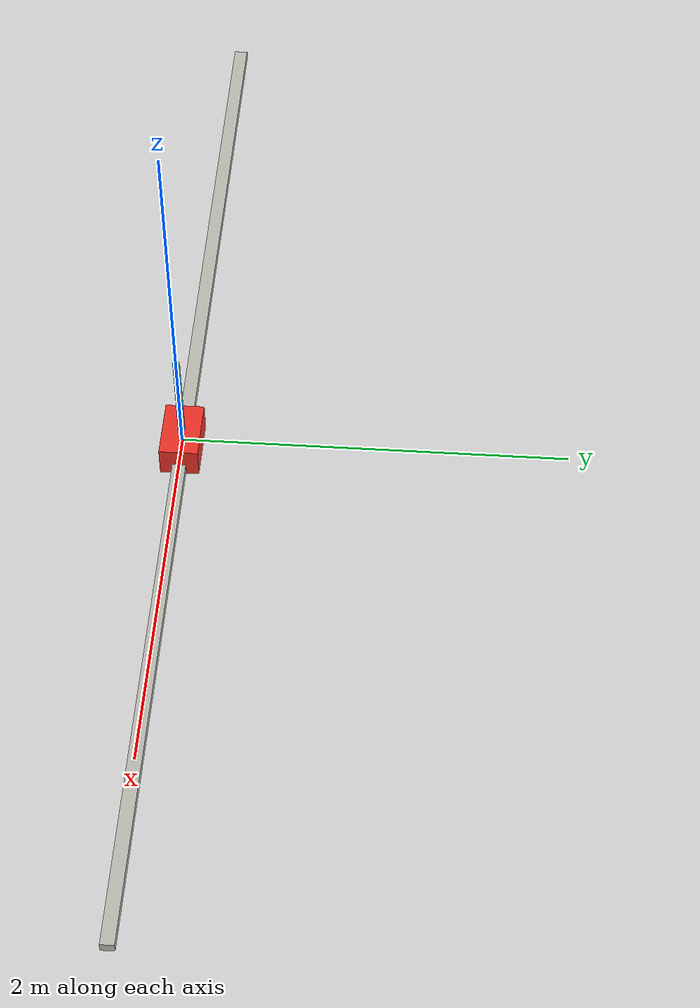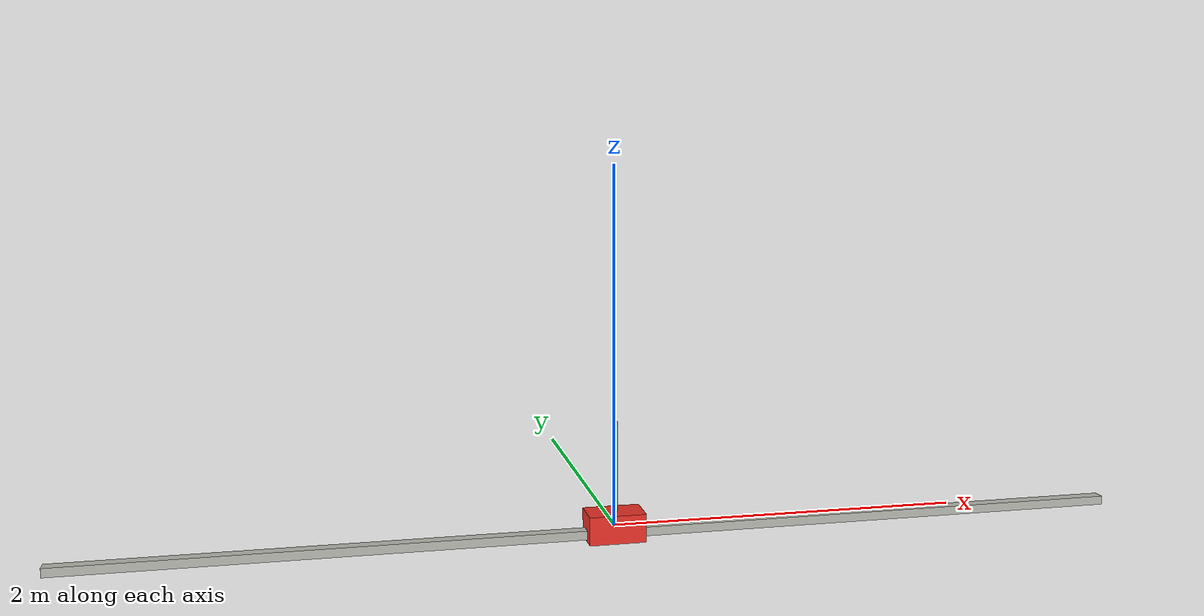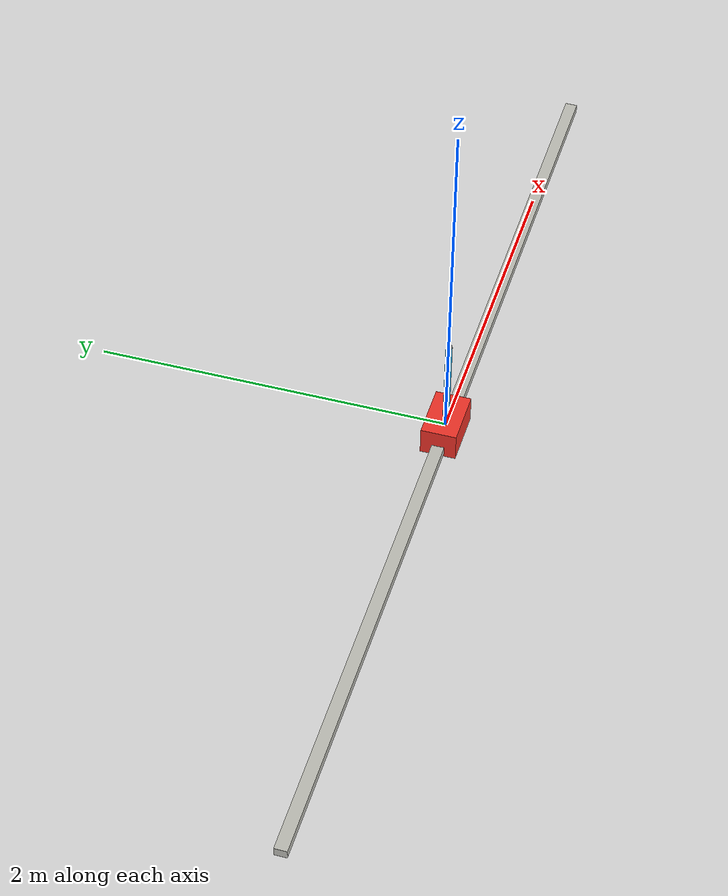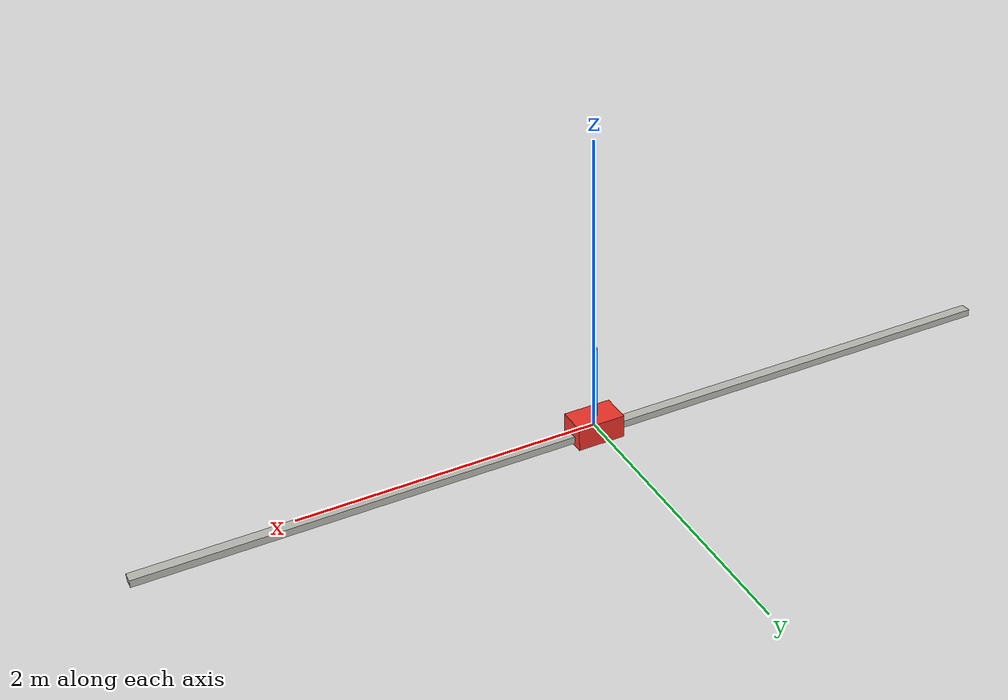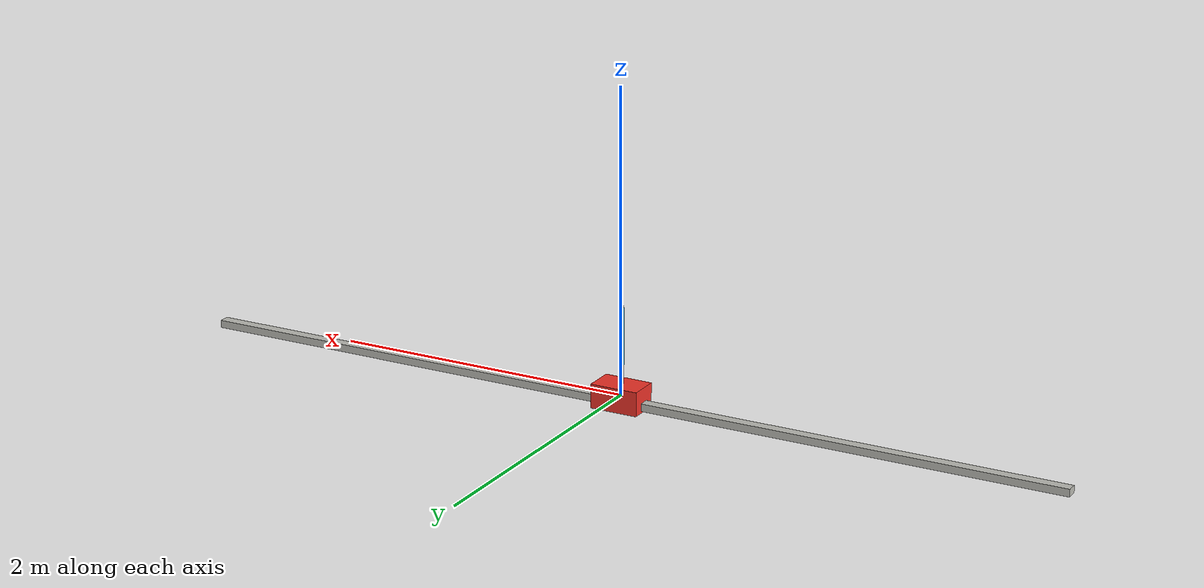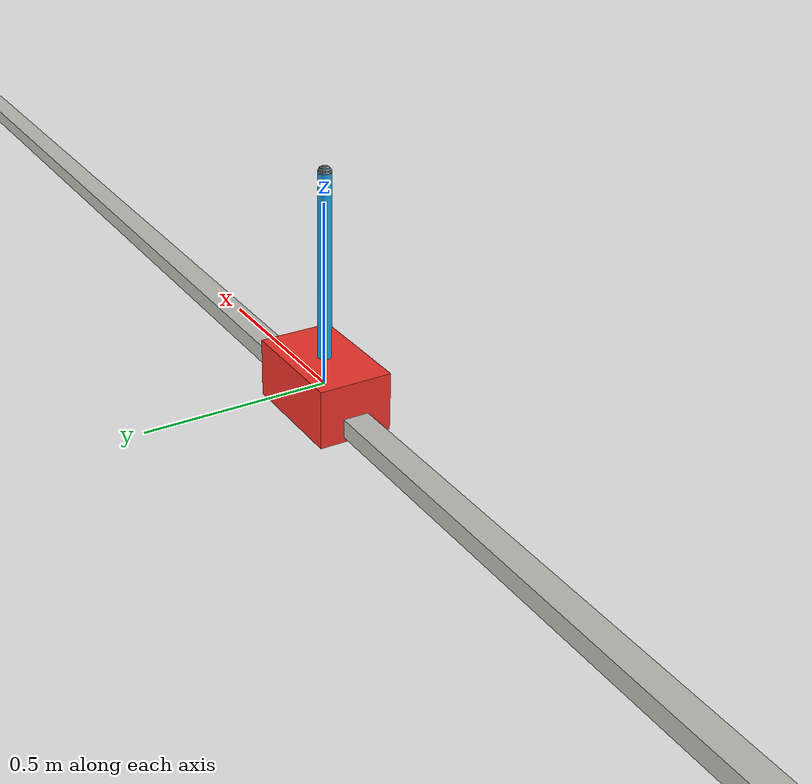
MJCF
<?xml version='1.0' encoding='utf-8'?>
<mujoco model="cartpole_1_link_pezzza_aligned">
  <compiler angle="radian" coordinate="local" />
  <option timestep="0.0025" gravity="0 0 -9.81" />
  <default>
    <geom friction="0.00001 0 0" contype="0" conaffinity="0" />
  </default>
  <asset>
    <material name="cart" rgba="0.95 0.2 0.16 1" />
    <material name="link" rgba="0.1 0.65 0.9 1" />
    <material name="track" rgba="0.75 0.75 0.72 1" />
  </asset>
  <worldbody>
    <light pos="0 -3 4" dir="0 0 -1" />
    <geom name="rail" type="box" pos="0 0 -0.04" size="3 0.035 0.025" material="track" />
    <body name="cart" pos="0 0 0">
      <joint name="slider" type="slide" axis="1 0 0" limited="true" range="-2.88 2.88" damping="0.08" stiffness="0.35" springref="0" />
      <geom name="cart_box" type="box" size="0.16 0.10 0.08" mass="1.0" material="cart" />
      <body name="link_1" pos="0 0 0.08000">
        <joint name="hinge_1" type="hinge" axis="0 1 0" damping="0.02" frictionloss="0" armature="0" />
        <geom name="rod_1" type="capsule" fromto="0 0 0 0 0 0.50000" size="0.01800" mass="0.1" material="link" />
        <site name="tip_1" pos="0 0 0.50000" size="0.018" />
      </body>
    </body>
  </worldbody>
  <actuator>
    <motor name="cart_force" joint="slider" gear="1" ctrllimited="true" ctrlrange="-38 38" />
  </actuator>
  <sensor>
    <jointpos name="cart_x" joint="slider" />
    <jointvel name="cart_v" joint="slider" />
    <jointpos name="theta_1" joint="hinge_1" />
    <jointvel name="omega_1" joint="hinge_1" />
  </sensor>
</mujoco>
